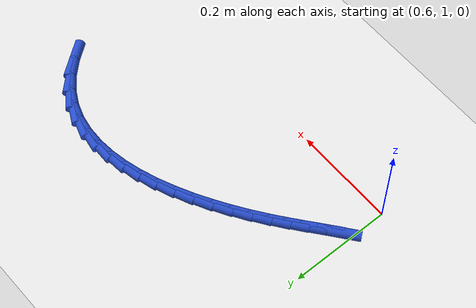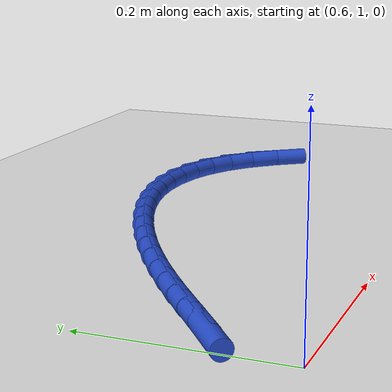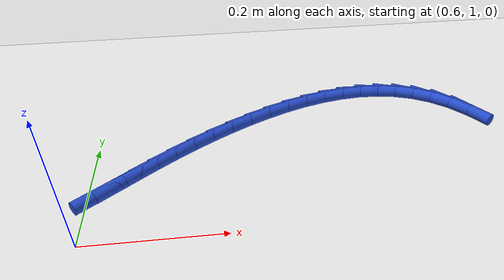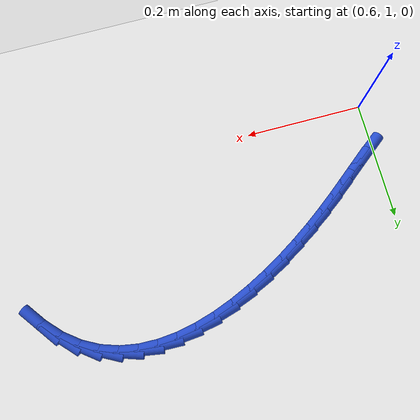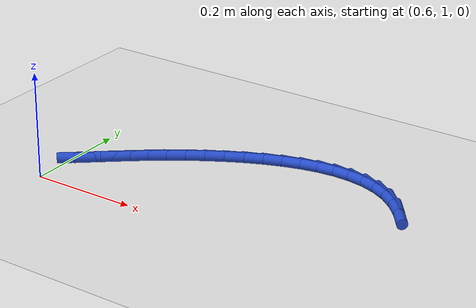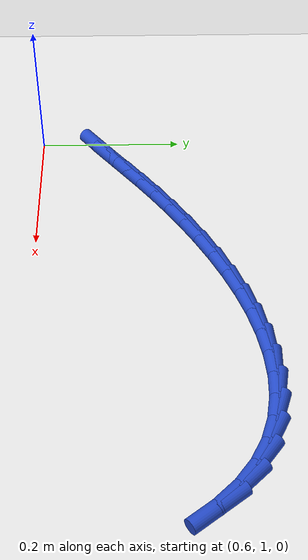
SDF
<sdf version="1.6">
 <world name="default">
  <model name="ground_plane">
   <static>1</static>
   <link name="link">
    <collision name="collision">
     <geometry><plane><normal>0 0 1</normal><size>100 100</size></plane></geometry>
     <surface><friction><ode><mu>100</mu><mu2>50</mu2></ode></friction></surface>
    </collision>
    <visual name="visual">
     <cast_shadows>0</cast_shadows>
     <geometry><plane><normal>0 0 1</normal><size>100 100</size></plane></geometry>
     <material>
      <script><uri>file://media/materials/scripts/gazebo.material</uri><name>Gazebo/WhiteGlow</name></script>
     </material>
    </visual>
   </link>
  </model>
  <model name="line">
   <link name="link_43">
    <pose>0.618450711420147 1.0863209825468068 0.01 0 1.57 0.670118501557556</pose>
    <collision name="collision">
     <geometry><cylinder><radius>0.01</radius><length>0.08</length></cylinder></geometry>
    </collision>
    <visual name="visual">
     <material>
      <script><name>Gazebo/Blue</name><uri>file://media/materials/scripts/gazebo.material</uri></script>
     </material>
     <geometry><cylinder><radius>0.01</radius><length>0.08</length></cylinder></geometry>
    </visual>
   </link>
   <link name="link_44">
    <pose>0.6429107817587572 1.1057042937134305 0.01 0 1.57 0.6819829245997432</pose>
    <collision name="collision">
     <geometry><cylinder><radius>0.01</radius><length>0.08</length></cylinder></geometry>
    </collision>
    <visual name="visual">
     <material>
      <script><name>Gazebo/Blue</name><uri>file://media/materials/scripts/gazebo.material</uri></script>
     </material>
     <geometry><cylinder><radius>0.01</radius><length>0.08</length></cylinder></geometry>
    </visual>
   </link>
   <link name="link_45">
    <pose>0.6668471357826383 1.1251393271210899 0.01 0 1.57 0.6770895313294641</pose>
    <collision name="collision">
     <geometry><cylinder><radius>0.01</radius><length>0.08</length></cylinder></geometry>
    </collision>
    <visual name="visual">
     <material>
      <script><name>Gazebo/Blue</name><uri>file://media/materials/scripts/gazebo.material</uri></script>
     </material>
     <geometry><cylinder><radius>0.01</radius><length>0.08</length></cylinder></geometry>
    </visual>
   </link>
   <link name="link_46">
    <pose>0.6912250552602538 1.1447357357216605 0.01 0 1.57 0.6566315655434309</pose>
    <collision name="collision">
     <geometry><cylinder><radius>0.01</radius><length>0.08</length></cylinder></geometry>
    </collision>
    <visual name="visual">
     <material>
      <script><name>Gazebo/Blue</name><uri>file://media/materials/scripts/gazebo.material</uri></script>
     </material>
     <geometry><cylinder><radius>0.01</radius><length>0.08</length></cylinder></geometry>
    </visual>
   </link>
   <link name="link_47">
    <pose>0.7169939945971804 1.1645964136851985 0.01 0 1.57 0.627439123160565</pose>
    <collision name="collision">
     <geometry><cylinder><radius>0.01</radius><length>0.08</length></cylinder></geometry>
    </collision>
    <visual name="visual">
     <material>
      <script><name>Gazebo/Blue</name><uri>file://media/materials/scripts/gazebo.material</uri></script>
     </material>
     <geometry><cylinder><radius>0.01</radius><length>0.08</length></cylinder></geometry>
    </visual>
   </link>
   <link name="link_48">
    <pose>0.7445765286283277 1.1845992610315113 0.01 0 1.57 0.5950037742382264</pose>
    <collision name="collision">
     <geometry><cylinder><radius>0.01</radius><length>0.08</length></cylinder></geometry>
    </collision>
    <visual name="visual">
     <material>
      <script><name>Gazebo/Blue</name><uri>file://media/materials/scripts/gazebo.material</uri></script>
     </material>
     <geometry><cylinder><radius>0.01</radius><length>0.08</length></cylinder></geometry>
    </visual>
   </link>
   <link name="link_49">
    <pose>0.7737579565509702 1.2043500410369339 0.01 0 1.57 0.5587999099870883</pose>
    <collision name="collision">
     <geometry><cylinder><radius>0.01</radius><length>0.08</length></cylinder></geometry>
    </collision>
    <visual name="visual">
     <material>
      <script><name>Gazebo/Blue</name><uri>file://media/materials/scripts/gazebo.material</uri></script>
     </material>
     <geometry><cylinder><radius>0.01</radius><length>0.08</length></cylinder></geometry>
    </visual>
   </link>
   <link name="link_50">
    <pose>0.8042854202178796 1.2234382225914175 0.01 0 1.57 0.5178605148760809</pose>
    <collision name="collision">
     <geometry><cylinder><radius>0.01</radius><length>0.08</length></cylinder></geometry>
    </collision>
    <visual name="visual">
     <material>
      <script><name>Gazebo/Blue</name><uri>file://media/materials/scripts/gazebo.material</uri></script>
     </material>
     <geometry><cylinder><radius>0.01</radius><length>0.08</length></cylinder></geometry>
    </visual>
   </link>
   <link name="link_51">
    <pose>0.8359060614818283 1.241453274584913 0.01 0 1.57 0.4710360252592495</pose>
    <collision name="collision">
     <geometry><cylinder><radius>0.01</radius><length>0.08</length></cylinder></geometry>
    </collision>
    <visual name="visual">
     <material>
      <script><name>Gazebo/Blue</name><uri>file://media/materials/scripts/gazebo.material</uri></script>
     </material>
     <geometry><cylinder><radius>0.01</radius><length>0.08</length></cylinder></geometry>
    </visual>
   </link>
   <link name="link_52">
    <pose>0.8683670221955878 1.2579846659073712 0.01 0 1.57 0.4169352515023136</pose>
    <collision name="collision">
     <geometry><cylinder><radius>0.01</radius><length>0.08</length></cylinder></geometry>
    </collision>
    <visual name="visual">
     <material>
      <script><name>Gazebo/Blue</name><uri>file://media/materials/scripts/gazebo.material</uri></script>
     </material>
     <geometry><cylinder><radius>0.01</radius><length>0.08</length></cylinder></geometry>
    </visual>
   </link>
   <link name="link_53">
    <pose>0.9014154442119305 1.2726218654487447 0.01 0 1.57 0.35387281322087755</pose>
    <collision name="collision">
     <geometry><cylinder><radius>0.01</radius><length>0.08</length></cylinder></geometry>
    </collision>
    <visual name="visual">
     <material>
      <script><name>Gazebo/Blue</name><uri>file://media/materials/scripts/gazebo.material</uri></script>
     </material>
     <geometry><cylinder><radius>0.01</radius><length>0.08</length></cylinder></geometry>
    </visual>
   </link>
   <link name="link_54">
    <pose>0.9347984693836288 1.2849543420989837 0.01 0 1.57 0.2798422098387656</pose>
    <collision name="collision">
     <geometry><cylinder><radius>0.01</radius><length>0.08</length></cylinder></geometry>
    </collision>
    <visual name="visual">
     <material>
      <script><name>Gazebo/Blue</name><uri>file://media/materials/scripts/gazebo.material</uri></script>
     </material>
     <geometry><cylinder><radius>0.01</radius><length>0.08</length></cylinder></geometry>
    </visual>
   </link>
   <link name="link_55">
    <pose>0.9682632395634543 1.2945715647480396 0.01 0 1.57 0.1925593886473168</pose>
    <collision name="collision">
     <geometry><cylinder><radius>0.01</radius><length>0.08</length></cylinder></geometry>
    </collision>
    <visual name="visual">
     <material>
      <script><name>Gazebo/Blue</name><uri>file://media/materials/scripts/gazebo.material</uri></script>
     </material>
     <geometry><cylinder><radius>0.01</radius><length>0.08</length></cylinder></geometry>
    </visual>
   </link>
   <link name="link_56">
    <pose>1.001556896604179 1.3010630022858636 0.01 0 1.57 0.08966309829257738</pose>
    <collision name="collision">
     <geometry><cylinder><radius>0.01</radius><length>0.08</length></cylinder></geometry>
    </collision>
    <visual name="visual">
     <material>
      <script><name>Gazebo/Blue</name><uri>file://media/materials/scripts/gazebo.material</uri></script>
     </material>
     <geometry><cylinder><radius>0.01</radius><length>0.08</length></cylinder></geometry>
    </visual>
   </link>
   <link name="link_57">
    <pose>1.0344265823585757 1.3040181236024073 0.01 0 1.57 -0.030796039616162993</pose>
    <collision name="collision">
     <geometry><cylinder><radius>0.01</radius><length>0.08</length></cylinder></geometry>
    </collision>
    <visual name="visual">
     <material>
      <script><name>Gazebo/Blue</name><uri>file://media/materials/scripts/gazebo.material</uri></script>
     </material>
     <geometry><cylinder><radius>0.01</radius><length>0.08</length></cylinder></geometry>
    </visual>
   </link>
   <link name="link_58">
    <pose>1.0666194386794157 1.303026397587622 0.01 0 1.57 -0.16945832840128605</pose>
    <collision name="collision">
     <geometry><cylinder><radius>0.01</radius><length>0.08</length></cylinder></geometry>
    </collision>
    <visual name="visual">
     <material>
      <script><name>Gazebo/Blue</name><uri>file://media/materials/scripts/gazebo.material</uri></script>
     </material>
     <geometry><cylinder><radius>0.01</radius><length>0.08</length></cylinder></geometry>
    </visual>
   </link>
   <link name="link_59">
    <pose>1.0978826074194714 1.2976772931314584 0.01 0 1.57 -0.3244450678076632</pose>
    <collision name="collision">
     <geometry><cylinder><radius>0.01</radius><length>0.08</length></cylinder></geometry>
    </collision>
    <visual name="visual">
     <material>
      <script><name>Gazebo/Blue</name><uri>file://media/materials/scripts/gazebo.material</uri></script>
     </material>
     <geometry><cylinder><radius>0.01</radius><length>0.08</length></cylinder></geometry>
    </visual>
   </link>
   <link name="link_60">
    <pose>1.1279632304315148 1.2875602791238683 0.01 0 1.57 -0.4904465407645844</pose>
    <collision name="collision">
     <geometry><cylinder><radius>0.01</radius><length>0.08</length></cylinder></geometry>
    </collision>
    <visual name="visual">
     <material>
      <script><name>Gazebo/Blue</name><uri>file://media/materials/scripts/gazebo.material</uri></script>
     </material>
     <geometry><cylinder><radius>0.01</radius><length>0.08</length></cylinder></geometry>
    </visual>
   </link>
   <link name="link_61">
    <pose>1.156608449568318 1.2722648244548023 0.01 0 1.57 -0.6591428239276981</pose>
    <collision name="collision">
     <geometry><cylinder><radius>0.01</radius><length>0.08</length></cylinder></geometry>
    </collision>
    <visual name="visual">
     <material>
      <script><name>Gazebo/Blue</name><uri>file://media/materials/scripts/gazebo.material</uri></script>
     </material>
     <geometry><cylinder><radius>0.01</radius><length>0.08</length></cylinder></geometry>
    </visual>
   </link>
   <link name="link_62">
    <pose>1.1835654066826533 1.251380398014212 0.01 0 1.57 -0.8179534055845642</pose>
    <collision name="collision">
     <geometry><cylinder><radius>0.01</radius><length>0.08</length></cylinder></geometry>
    </collision>
    <visual name="visual">
     <material>
      <script><name>Gazebo/Blue</name><uri>file://media/materials/scripts/gazebo.material</uri></script>
     </material>
     <geometry><cylinder><radius>0.01</radius><length>0.08</length></cylinder></geometry>
    </visual>
   </link>
   <link name="link_63">
    <pose>1.2086137301919189 1.2246456688669076 0.01 0 1.57 -0.9355500227228918</pose>
    <collision name="collision">
     <geometry><cylinder><radius>0.01</radius><length>0.08</length></cylinder></geometry>
    </collision>
    <visual name="visual">
     <material>
      <script><name>Gazebo/Blue</name><uri>file://media/materials/scripts/gazebo.material</uri></script>
     </material>
     <geometry><cylinder><radius>0.01</radius><length>0.08</length></cylinder></geometry>
    </visual>
   </link>
  </model>
 </world>
</sdf>
